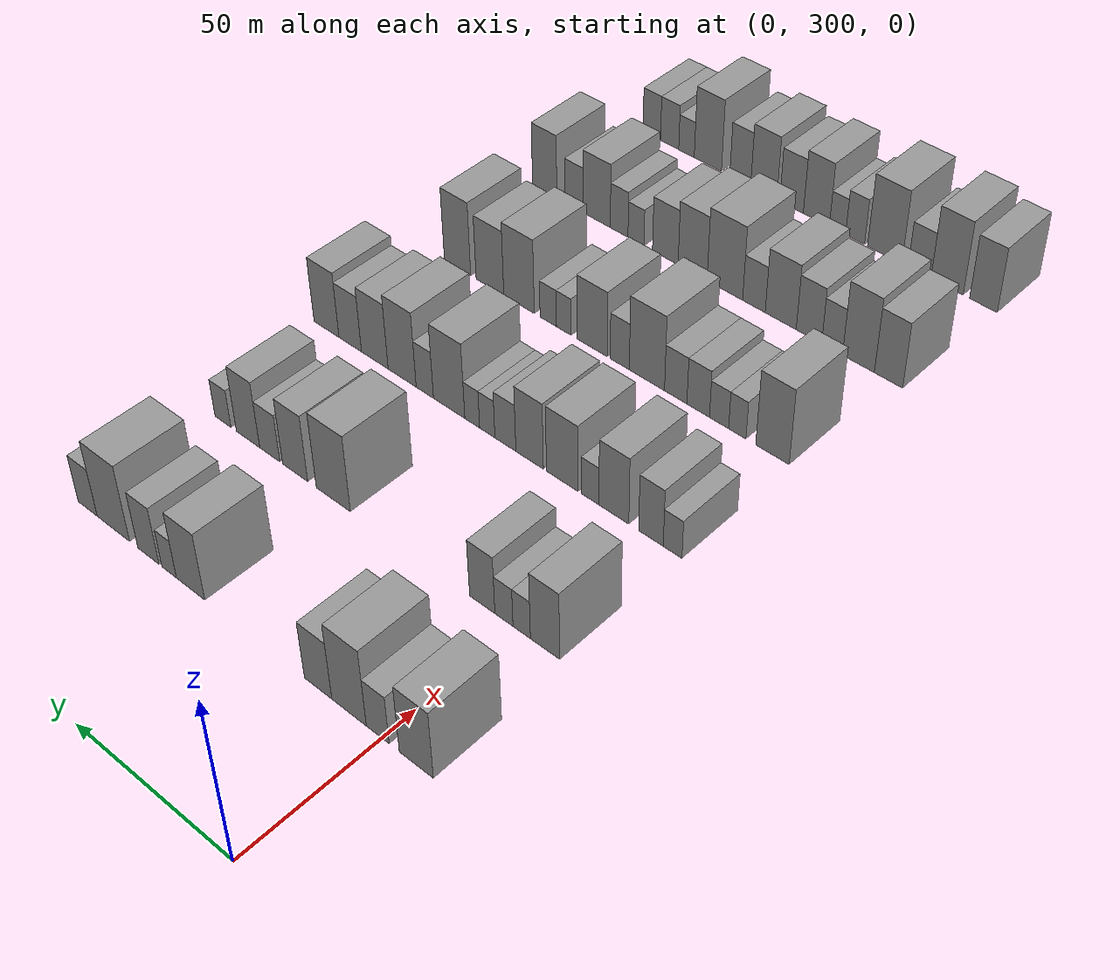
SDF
<sdf version="1.6">
 <world name="default">
  <model name="building_94">
   <static>1</static>
   <pose>50.0000 289.8566 0 0.000000 0.000000 0.000000</pose>
   <link name="link">
    <pose>0 0 10.50 0 0 0</pose>
    <collision name="collision"><geometry><box><size>20.0000 9.9284 21.0000</size></box></geometry></collision>
    <visual name="visual">
     <cast_shadows>0</cast_shadows>
     <geometry><box><size>20.0000 9.9284 21.0000</size></box></geometry>
     <material>
      <script>
       <uri>model://grey_wall/materials/scripts</uri>
       <uri>model://grey_wall/materials/textures</uri>
       <name>vrc/grey_wall</name>
      </script>
     </material>
    </visual>
   </link>
  </model>
  <model name="building_95">
   <static>1</static>
   <pose>50.0000 301.2341 0 0.000000 0.000000 0.000000</pose>
   <link name="link">
    <pose>0 0 7.50 0 0 0</pose>
    <collision name="collision"><geometry><box><size>20.0000 6.8267 15.0000</size></box></geometry></collision>
    <visual name="visual">
     <cast_shadows>0</cast_shadows>
     <geometry><box><size>20.0000 6.8267 15.0000</size></box></geometry>
     <material>
      <script>
       <uri>model://grey_wall/materials/scripts</uri>
       <uri>model://grey_wall/materials/textures</uri>
       <name>vrc/grey_wall</name>
      </script>
     </material>
    </visual>
   </link>
  </model>
  <model name="building_96">
   <static>1</static>
   <pose>50.0000 309.9277 0 0.000000 0.000000 0.000000</pose>
   <link name="link">
    <pose>0 0 12.00 0 0 0</pose>
    <collision name="collision"><geometry><box><size>20.0000 10.5604 24.0000</size></box></geometry></collision>
    <visual name="visual">
     <cast_shadows>0</cast_shadows>
     <geometry><box><size>20.0000 10.5604 24.0000</size></box></geometry>
     <material>
      <script>
       <uri>model://grey_wall/materials/scripts</uri>
       <uri>model://grey_wall/materials/textures</uri>
       <name>vrc/grey_wall</name>
      </script>
     </material>
    </visual>
   </link>
  </model>
  <model name="building_97">
   <static>1</static>
   <pose>50.0000 319.4888 0 0.000000 0.000000 0.000000</pose>
   <link name="link">
    <pose>0 0 9.00 0 0 0</pose>
    <collision name="collision"><geometry><box><size>20.0000 8.5619 18.0000</size></box></geometry></collision>
    <visual name="visual">
     <cast_shadows>0</cast_shadows>
     <geometry><box><size>20.0000 8.5619 18.0000</size></box></geometry>
     <material>
      <script>
       <uri>model://grey_wall/materials/scripts</uri>
       <uri>model://grey_wall/materials/textures</uri>
       <name>vrc/grey_wall</name>
      </script>
     </material>
    </visual>
   </link>
  </model>
  <model name="building_98">
   <static>1</static>
   <pose>50.0000 361.4124 0 0.000000 0.000000 0.000000</pose>
   <link name="link">
    <pose>0 0 10.50 0 0 0</pose>
    <collision name="collision"><geometry><box><size>20.0000 9.7618 21.0000</size></box></geometry></collision>
    <visual name="visual">
     <cast_shadows>0</cast_shadows>
     <geometry><box><size>20.0000 9.7618 21.0000</size></box></geometry>
     <material>
      <script>
       <uri>model://grey_wall/materials/scripts</uri>
       <uri>model://grey_wall/materials/textures</uri>
       <name>vrc/grey_wall</name>
      </script>
     </material>
    </visual>
   </link>
  </model>
  <model name="building_99">
   <static>1</static>
   <pose>50.0000 368.8396 0 0.000000 0.000000 0.000000</pose>
   <link name="link">
    <pose>0 0 6.00 0 0 0</pose>
    <collision name="collision"><geometry><box><size>20.0000 5.0926 12.0000</size></box></geometry></collision>
    <visual name="visual">
     <cast_shadows>0</cast_shadows>
     <geometry><box><size>20.0000 5.0926 12.0000</size></box></geometry>
     <material>
      <script>
       <uri>model://grey_wall/materials/scripts</uri>
       <uri>model://grey_wall/materials/textures</uri>
       <name>vrc/grey_wall</name>
      </script>
     </material>
    </visual>
   </link>
  </model>
  <model name="building_100">
   <static>1</static>
   <pose>50.0000 376.1651 0 0.000000 0.000000 0.000000</pose>
   <link name="link">
    <pose>0 0 9.00 0 0 0</pose>
    <collision name="collision"><geometry><box><size>20.0000 7.5584 18.0000</size></box></geometry></collision>
    <visual name="visual">
     <cast_shadows>0</cast_shadows>
     <geometry><box><size>20.0000 7.5584 18.0000</size></box></geometry>
     <material>
      <script>
       <uri>model://grey_wall/materials/scripts</uri>
       <uri>model://grey_wall/materials/textures</uri>
       <name>vrc/grey_wall</name>
      </script>
     </material>
    </visual>
   </link>
  </model>
  <model name="building_101">
   <static>1</static>
   <pose>50.0000 388.8733 0 0.000000 0.000000 0.000000</pose>
   <link name="link">
    <pose>0 0 12.00 0 0 0</pose>
    <collision name="collision"><geometry><box><size>20.0000 11.8580 24.0000</size></box></geometry></collision>
    <visual name="visual">
     <cast_shadows>0</cast_shadows>
     <geometry><box><size>20.0000 11.8580 24.0000</size></box></geometry>
     <material>
      <script>
       <uri>model://grey_wall/materials/scripts</uri>
       <uri>model://grey_wall/materials/textures</uri>
       <name>vrc/grey_wall</name>
      </script>
     </material>
    </visual>
   </link>
  </model>
  <model name="building_102">
   <static>1</static>
   <pose>50.0000 398.3604 0 0.000000 0.000000 0.000000</pose>
   <link name="link">
    <pose>0 0 7.50 0 0 0</pose>
    <collision name="collision"><geometry><box><size>20.0000 7.1162 15.0000</size></box></geometry></collision>
    <visual name="visual">
     <cast_shadows>0</cast_shadows>
     <geometry><box><size>20.0000 7.1162 15.0000</size></box></geometry>
     <material>
      <script>
       <uri>model://grey_wall/materials/scripts</uri>
       <uri>model://grey_wall/materials/textures</uri>
       <name>vrc/grey_wall</name>
      </script>
     </material>
    </visual>
   </link>
  </model>
  <model name="building_226">
   <static>1</static>
   <pose>90.0000 291.0913 0 0.000000 0.000000 0.000000</pose>
   <link name="link">
    <pose>0 0 10.50 0 0 0</pose>
    <collision name="collision"><geometry><box><size>20.0000 8.6378 21.0000</size></box></geometry></collision>
    <visual name="visual">
     <cast_shadows>0</cast_shadows>
     <geometry><box><size>20.0000 8.6378 21.0000</size></box></geometry>
     <material>
      <script>
       <uri>model://grey_wall/materials/scripts</uri>
       <uri>model://grey_wall/materials/textures</uri>
       <name>vrc/grey_wall</name>
      </script>
     </material>
    </visual>
   </link>
  </model>
  <model name="building_227">
   <static>1</static>
   <pose>90.0000 298.0168 0 0.000000 0.000000 0.000000</pose>
   <link name="link">
    <pose>0 0 6.00 0 0 0</pose>
    <collision name="collision"><geometry><box><size>20.0000 5.2132 12.0000</size></box></geometry></collision>
    <visual name="visual">
     <cast_shadows>0</cast_shadows>
     <geometry><box><size>20.0000 5.2132 12.0000</size></box></geometry>
     <material>
      <script>
       <uri>model://grey_wall/materials/scripts</uri>
       <uri>model://grey_wall/materials/textures</uri>
       <name>vrc/grey_wall</name>
      </script>
     </material>
    </visual>
   </link>
  </model>
  <model name="building_228">
   <static>1</static>
   <pose>90.0000 303.3634 0 0.000000 0.000000 0.000000</pose>
   <link name="link">
    <pose>0 0 6.00 0 0 0</pose>
    <collision name="collision"><geometry><box><size>20.0000 5.4800 12.0000</size></box></geometry></collision>
    <visual name="visual">
     <cast_shadows>0</cast_shadows>
     <geometry><box><size>20.0000 5.4800 12.0000</size></box></geometry>
     <material>
      <script>
       <uri>model://grey_wall/materials/scripts</uri>
       <uri>model://grey_wall/materials/textures</uri>
       <name>vrc/grey_wall</name>
      </script>
     </material>
    </visual>
   </link>
  </model>
  <model name="building_229">
   <static>1</static>
   <pose>90.0000 309.9746 0 0.000000 0.000000 0.000000</pose>
   <link name="link">
    <pose>0 0 9.00 0 0 0</pose>
    <collision name="collision"><geometry><box><size>20.0000 7.7425 18.0000</size></box></geometry></collision>
    <visual name="visual">
     <cast_shadows>0</cast_shadows>
     <geometry><box><size>20.0000 7.7425 18.0000</size></box></geometry>
     <material>
      <script>
       <uri>model://grey_wall/materials/scripts</uri>
       <uri>model://grey_wall/materials/textures</uri>
       <name>vrc/grey_wall</name>
      </script>
     </material>
    </visual>
   </link>
  </model>
  <model name="building_230">
   <static>1</static>
   <pose>90.0000 358.2729 0 0.000000 0.000000 0.000000</pose>
   <link name="link">
    <pose>0 0 12.00 0 0 0</pose>
    <collision name="collision"><geometry><box><size>20.0000 11.6180 24.0000</size></box></geometry></collision>
    <visual name="visual">
     <cast_shadows>0</cast_shadows>
     <geometry><box><size>20.0000 11.6180 24.0000</size></box></geometry>
     <material>
      <script>
       <uri>model://grey_wall/materials/scripts</uri>
       <uri>model://grey_wall/materials/textures</uri>
       <name>vrc/grey_wall</name>
      </script>
     </material>
    </visual>
   </link>
  </model>
  <model name="building_231">
   <static>1</static>
   <pose>90.0000 371.4875 0 0.000000 0.000000 0.000000</pose>
   <link name="link">
    <pose>0 0 10.50 0 0 0</pose>
    <collision name="collision"><geometry><box><size>20.0000 8.8111 21.0000</size></box></geometry></collision>
    <visual name="visual">
     <cast_shadows>0</cast_shadows>
     <geometry><box><size>20.0000 8.8111 21.0000</size></box></geometry>
     <material>
      <script>
       <uri>model://grey_wall/materials/scripts</uri>
       <uri>model://grey_wall/materials/textures</uri>
       <name>vrc/grey_wall</name>
      </script>
     </material>
    </visual>
   </link>
  </model>
  <model name="building_232">
   <static>1</static>
   <pose>90.0000 380.5006 0 0.000000 0.000000 0.000000</pose>
   <link name="link">
    <pose>0 0 7.50 0 0 0</pose>
    <collision name="collision"><geometry><box><size>20.0000 7.2152 15.0000</size></box></geometry></collision>
    <visual name="visual">
     <cast_shadows>0</cast_shadows>
     <geometry><box><size>20.0000 7.2152 15.0000</size></box></geometry>
     <material>
      <script>
       <uri>model://grey_wall/materials/scripts</uri>
       <uri>model://grey_wall/materials/textures</uri>
       <name>vrc/grey_wall</name>
      </script>
     </material>
    </visual>
   </link>
  </model>
  <model name="building_233">
   <static>1</static>
   <pose>90.0000 388.3572 0 0.000000 0.000000 0.000000</pose>
   <link name="link">
    <pose>0 0 10.50 0 0 0</pose>
    <collision name="collision"><geometry><box><size>20.0000 8.4979 21.0000</size></box></geometry></collision>
    <visual name="visual">
     <cast_shadows>0</cast_shadows>
     <geometry><box><size>20.0000 8.4979 21.0000</size></box></geometry>
     <material>
      <script>
       <uri>model://grey_wall/materials/scripts</uri>
       <uri>model://grey_wall/materials/textures</uri>
       <name>vrc/grey_wall</name>
      </script>
     </material>
    </visual>
   </link>
  </model>
  <model name="building_234">
   <static>1</static>
   <pose>90.0000 397.5724 0 0.000000 0.000000 0.000000</pose>
   <link name="link">
    <pose>0 0 6.00 0 0 0</pose>
    <collision name="collision"><geometry><box><size>20.0000 5.9325 12.0000</size></box></geometry></collision>
    <visual name="visual">
     <cast_shadows>0</cast_shadows>
     <geometry><box><size>20.0000 5.9325 12.0000</size></box></geometry>
     <material>
      <script>
       <uri>model://grey_wall/materials/scripts</uri>
       <uri>model://grey_wall/materials/textures</uri>
       <name>vrc/grey_wall</name>
      </script>
     </material>
    </visual>
   </link>
  </model>
  <model name="building_358">
   <static>1</static>
   <pose>130.0000 288.8513 0 0.000000 0.000000 0.000000</pose>
   <link name="link">
    <pose>0 0 6.00 0 0 0</pose>
    <collision name="collision"><geometry><box><size>20.0000 5.5516 12.0000</size></box></geometry></collision>
    <visual name="visual">
     <cast_shadows>0</cast_shadows>
     <geometry><box><size>20.0000 5.5516 12.0000</size></box></geometry>
     <material>
      <script>
       <uri>model://grey_wall/materials/scripts</uri>
       <uri>model://grey_wall/materials/textures</uri>
       <name>vrc/grey_wall</name>
      </script>
     </material>
    </visual>
   </link>
  </model>
  <model name="building_359">
   <static>1</static>
   <pose>130.0000 295.3105 0 0.000000 0.000000 0.000000</pose>
   <link name="link">
    <pose>0 0 9.00 0 0 0</pose>
    <collision name="collision"><geometry><box><size>20.0000 7.3666 18.0000</size></box></geometry></collision>
    <visual name="visual">
     <cast_shadows>0</cast_shadows>
     <geometry><box><size>20.0000 7.3666 18.0000</size></box></geometry>
     <material>
      <script>
       <uri>model://grey_wall/materials/scripts</uri>
       <uri>model://grey_wall/materials/textures</uri>
       <name>vrc/grey_wall</name>
      </script>
     </material>
    </visual>
   </link>
  </model>
  <model name="building_360">
   <static>1</static>
   <pose>130.0000 306.5625 0 0.000000 0.000000 0.000000</pose>
   <link name="link">
    <pose>0 0 10.50 0 0 0</pose>
    <collision name="collision"><geometry><box><size>20.0000 9.1374 21.0000</size></box></geometry></collision>
    <visual name="visual">
     <cast_shadows>0</cast_shadows>
     <geometry><box><size>20.0000 9.1374 21.0000</size></box></geometry>
     <material>
      <script>
       <uri>model://grey_wall/materials/scripts</uri>
       <uri>model://grey_wall/materials/textures</uri>
       <name>vrc/grey_wall</name>
      </script>
     </material>
    </visual>
   </link>
  </model>
  <model name="building_361">
   <static>1</static>
   <pose>130.0000 313.8919 0 0.000000 0.000000 0.000000</pose>
   <link name="link">
    <pose>0 0 6.00 0 0 0</pose>
    <collision name="collision"><geometry><box><size>20.0000 5.5212 12.0000</size></box></geometry></collision>
    <visual name="visual">
     <cast_shadows>0</cast_shadows>
     <geometry><box><size>20.0000 5.5212 12.0000</size></box></geometry>
     <material>
      <script>
       <uri>model://grey_wall/materials/scripts</uri>
       <uri>model://grey_wall/materials/textures</uri>
       <name>vrc/grey_wall</name>
      </script>
     </material>
    </visual>
   </link>
  </model>
  <model name="building_362">
   <static>1</static>
   <pose>130.0000 322.6916 0 0.000000 0.000000 0.000000</pose>
   <link name="link">
    <pose>0 0 10.50 0 0 0</pose>
    <collision name="collision"><geometry><box><size>20.0000 10.0783 21.0000</size></box></geometry></collision>
    <visual name="visual">
     <cast_shadows>0</cast_shadows>
     <geometry><box><size>20.0000 10.0783 21.0000</size></box></geometry>
     <material>
      <script>
       <uri>model://grey_wall/materials/scripts</uri>
       <uri>model://grey_wall/materials/textures</uri>
       <name>vrc/grey_wall</name>
      </script>
     </material>
    </visual>
   </link>
  </model>
  <model name="building_363">
   <static>1</static>
   <pose>130.0000 333.2124 0 0.000000 0.000000 0.000000</pose>
   <link name="link">
    <pose>0 0 10.50 0 0 0</pose>
    <collision name="collision"><geometry><box><size>20.0000 8.9632 21.0000</size></box></geometry></collision>
    <visual name="visual">
     <cast_shadows>0</cast_shadows>
     <geometry><box><size>20.0000 8.9632 21.0000</size></box></geometry>
     <material>
      <script>
       <uri>model://grey_wall/materials/scripts</uri>
       <uri>model://grey_wall/materials/textures</uri>
       <name>vrc/grey_wall</name>
      </script>
     </material>
    </visual>
   </link>
  </model>
  <model name="building_364">
   <static>1</static>
   <pose>130.0000 341.1649 0 0.000000 0.000000 0.000000</pose>
   <link name="link">
    <pose>0 0 7.50 0 0 0</pose>
    <collision name="collision"><geometry><box><size>20.0000 6.9418 15.0000</size></box></geometry></collision>
    <visual name="visual">
     <cast_shadows>0</cast_shadows>
     <geometry><box><size>20.0000 6.9418 15.0000</size></box></geometry>
     <material>
      <script>
       <uri>model://grey_wall/materials/scripts</uri>
       <uri>model://grey_wall/materials/textures</uri>
       <name>vrc/grey_wall</name>
      </script>
     </material>
    </visual>
   </link>
  </model>
  <model name="building_365">
   <static>1</static>
   <pose>130.0000 347.1981 0 0.000000 0.000000 0.000000</pose>
   <link name="link">
    <pose>0 0 6.00 0 0 0</pose>
    <collision name="collision"><geometry><box><size>20.0000 5.1246 12.0000</size></box></geometry></collision>
    <visual name="visual">
     <cast_shadows>0</cast_shadows>
     <geometry><box><size>20.0000 5.1246 12.0000</size></box></geometry>
     <material>
      <script>
       <uri>model://grey_wall/materials/scripts</uri>
       <uri>model://grey_wall/materials/textures</uri>
       <name>vrc/grey_wall</name>
      </script>
     </material>
    </visual>
   </link>
  </model>
  <model name="building_366">
   <static>1</static>
   <pose>130.0000 352.2677 0 0.000000 0.000000 0.000000</pose>
   <link name="link">
    <pose>0 0 6.00 0 0 0</pose>
    <collision name="collision"><geometry><box><size>20.0000 5.0145 12.0000</size></box></geometry></collision>
    <visual name="visual">
     <cast_shadows>0</cast_shadows>
     <geometry><box><size>20.0000 5.0145 12.0000</size></box></geometry>
     <material>
      <script>
       <uri>model://grey_wall/materials/scripts</uri>
       <uri>model://grey_wall/materials/textures</uri>
       <name>vrc/grey_wall</name>
      </script>
     </material>
    </visual>
   </link>
  </model>
  <model name="building_367">
   <static>1</static>
   <pose>130.0000 360.1762 0 0.000000 0.000000 0.000000</pose>
   <link name="link">
    <pose>0 0 12.00 0 0 0</pose>
    <collision name="collision"><geometry><box><size>20.0000 10.8025 24.0000</size></box></geometry></collision>
    <visual name="visual">
     <cast_shadows>0</cast_shadows>
     <geometry><box><size>20.0000 10.8025 24.0000</size></box></geometry>
     <material>
      <script>
       <uri>model://grey_wall/materials/scripts</uri>
       <uri>model://grey_wall/materials/textures</uri>
       <name>vrc/grey_wall</name>
      </script>
     </material>
    </visual>
   </link>
  </model>
  <model name="building_368">
   <static>1</static>
   <pose>130.0000 368.6038 0 0.000000 0.000000 0.000000</pose>
   <link name="link">
    <pose>0 0 7.50 0 0 0</pose>
    <collision name="collision"><geometry><box><size>20.0000 6.0529 15.0000</size></box></geometry></collision>
    <visual name="visual">
     <cast_shadows>0</cast_shadows>
     <geometry><box><size>20.0000 6.0529 15.0000</size></box></geometry>
     <material>
      <script>
       <uri>model://grey_wall/materials/scripts</uri>
       <uri>model://grey_wall/materials/textures</uri>
       <name>vrc/grey_wall</name>
      </script>
     </material>
    </visual>
   </link>
  </model>
  <model name="building_369">
   <static>1</static>
   <pose>130.0000 376.6238 0 0.000000 0.000000 0.000000</pose>
   <link name="link">
    <pose>0 0 12.00 0 0 0</pose>
    <collision name="collision"><geometry><box><size>20.0000 9.9871 24.0000</size></box></geometry></collision>
    <visual name="visual">
     <cast_shadows>0</cast_shadows>
     <geometry><box><size>20.0000 9.9871 24.0000</size></box></geometry>
     <material>
      <script>
       <uri>model://grey_wall/materials/scripts</uri>
       <uri>model://grey_wall/materials/textures</uri>
       <name>vrc/grey_wall</name>
      </script>
     </material>
    </visual>
   </link>
  </model>
  <model name="building_370">
   <static>1</static>
   <pose>130.0000 386.4634 0 0.000000 0.000000 0.000000</pose>
   <link name="link">
    <pose>0 0 10.50 0 0 0</pose>
    <collision name="collision"><geometry><box><size>20.0000 9.6920 21.0000</size></box></geometry></collision>
    <visual name="visual">
     <cast_shadows>0</cast_shadows>
     <geometry><box><size>20.0000 9.6920 21.0000</size></box></geometry>
     <material>
      <script>
       <uri>model://grey_wall/materials/scripts</uri>
       <uri>model://grey_wall/materials/textures</uri>
       <name>vrc/grey_wall</name>
      </script>
     </material>
    </visual>
   </link>
  </model>
  <model name="building_371">
   <static>1</static>
   <pose>130.0000 395.4681 0 0.000000 0.000000 0.000000</pose>
   <link name="link">
    <pose>0 0 9.00 0 0 0</pose>
    <collision name="collision"><geometry><box><size>20.0000 8.3175 18.0000</size></box></geometry></collision>
    <visual name="visual">
     <cast_shadows>0</cast_shadows>
     <geometry><box><size>20.0000 8.3175 18.0000</size></box></geometry>
     <material>
      <script>
       <uri>model://grey_wall/materials/scripts</uri>
       <uri>model://grey_wall/materials/textures</uri>
       <name>vrc/grey_wall</name>
      </script>
     </material>
    </visual>
   </link>
  </model>
  <model name="building_372">
   <static>1</static>
   <pose>130.0000 404.3002 0 0.000000 0.000000 0.000000</pose>
   <link name="link">
    <pose>0 0 10.50 0 0 0</pose>
    <collision name="collision"><geometry><box><size>20.0000 9.3465 21.0000</size></box></geometry></collision>
    <visual name="visual">
     <cast_shadows>0</cast_shadows>
     <geometry><box><size>20.0000 9.3465 21.0000</size></box></geometry>
     <material>
      <script>
       <uri>model://grey_wall/materials/scripts</uri>
       <uri>model://grey_wall/materials/textures</uri>
       <name>vrc/grey_wall</name>
      </script>
     </material>
    </visual>
   </link>
  </model>
  <model name="building_502">
   <static>1</static>
   <pose>170.0000 291.4764 0 0.000000 0.000000 0.000000</pose>
   <link name="link">
    <pose>0 0 12.00 0 0 0</pose>
    <collision name="collision"><geometry><box><size>20.0000 10.0750 24.0000</size></box></geometry></collision>
    <visual name="visual">
     <cast_shadows>0</cast_shadows>
     <geometry><box><size>20.0000 10.0750 24.0000</size></box></geometry>
     <material>
      <script>
       <uri>model://grey_wall/materials/scripts</uri>
       <uri>model://grey_wall/materials/textures</uri>
       <name>vrc/grey_wall</name>
      </script>
     </material>
    </visual>
   </link>
  </model>
  <model name="building_503">
   <static>1</static>
   <pose>170.0000 302.1935 0 0.000000 0.000000 0.000000</pose>
   <link name="link">
    <pose>0 0 6.00 0 0 0</pose>
    <collision name="collision"><geometry><box><size>20.0000 5.3593 12.0000</size></box></geometry></collision>
    <visual name="visual">
     <cast_shadows>0</cast_shadows>
     <geometry><box><size>20.0000 5.3593 12.0000</size></box></geometry>
     <material>
      <script>
       <uri>model://grey_wall/materials/scripts</uri>
       <uri>model://grey_wall/materials/textures</uri>
       <name>vrc/grey_wall</name>
      </script>
     </material>
    </visual>
   </link>
  </model>
  <model name="building_504">
   <static>1</static>
   <pose>170.0000 307.8548 0 0.000000 0.000000 0.000000</pose>
   <link name="link">
    <pose>0 0 6.00 0 0 0</pose>
    <collision name="collision"><geometry><box><size>20.0000 5.9631 12.0000</size></box></geometry></collision>
    <visual name="visual">
     <cast_shadows>0</cast_shadows>
     <geometry><box><size>20.0000 5.9631 12.0000</size></box></geometry>
     <material>
      <script>
       <uri>model://grey_wall/materials/scripts</uri>
       <uri>model://grey_wall/materials/textures</uri>
       <name>vrc/grey_wall</name>
      </script>
     </material>
    </visual>
   </link>
  </model>
  <model name="building_505">
   <static>1</static>
   <pose>170.0000 314.4059 0 0.000000 0.000000 0.000000</pose>
   <link name="link">
    <pose>0 0 7.50 0 0 0</pose>
    <collision name="collision"><geometry><box><size>20.0000 7.1392 15.0000</size></box></geometry></collision>
    <visual name="visual">
     <cast_shadows>0</cast_shadows>
     <geometry><box><size>20.0000 7.1392 15.0000</size></box></geometry>
     <material>
      <script>
       <uri>model://grey_wall/materials/scripts</uri>
       <uri>model://grey_wall/materials/textures</uri>
       <name>vrc/grey_wall</name>
      </script>
     </material>
    </visual>
   </link>
  </model>
  <model name="building_506">
   <static>1</static>
   <pose>170.0000 321.5664 0 0.000000 0.000000 0.000000</pose>
   <link name="link">
    <pose>0 0 7.50 0 0 0</pose>
    <collision name="collision"><geometry><box><size>20.0000 7.1817 15.0000</size></box></geometry></collision>
    <visual name="visual">
     <cast_shadows>0</cast_shadows>
     <geometry><box><size>20.0000 7.1817 15.0000</size></box></geometry>
     <material>
      <script>
       <uri>model://grey_wall/materials/scripts</uri>
       <uri>model://grey_wall/materials/textures</uri>
       <name>vrc/grey_wall</name>
      </script>
     </material>
    </visual>
   </link>
  </model>
  <model name="building_507">
   <static>1</static>
   <pose>170.0000 330.9106 0 0.000000 0.000000 0.000000</pose>
   <link name="link">
    <pose>0 0 12.00 0 0 0</pose>
    <collision name="collision"><geometry><box><size>20.0000 11.5068 24.0000</size></box></geometry></collision>
    <visual name="visual">
     <cast_shadows>0</cast_shadows>
     <geometry><box><size>20.0000 11.5068 24.0000</size></box></geometry>
     <material>
      <script>
       <uri>model://grey_wall/materials/scripts</uri>
       <uri>model://grey_wall/materials/textures</uri>
       <name>vrc/grey_wall</name>
      </script>
     </material>
    </visual>
   </link>
  </model>
  <model name="building_508">
   <static>1</static>
   <pose>170.0000 339.8297 0 0.000000 0.000000 0.000000</pose>
   <link name="link">
    <pose>0 0 7.50 0 0 0</pose>
    <collision name="collision"><geometry><box><size>20.0000 6.3314 15.0000</size></box></geometry></collision>
    <visual name="visual">
     <cast_shadows>0</cast_shadows>
     <geometry><box><size>20.0000 6.3314 15.0000</size></box></geometry>
     <material>
      <script>
       <uri>model://grey_wall/materials/scripts</uri>
       <uri>model://grey_wall/materials/textures</uri>
       <name>vrc/grey_wall</name>
      </script>
     </material>
    </visual>
   </link>
  </model>
  <model name="building_509">
   <static>1</static>
   <pose>170.0000 349.1346 0 0.000000 0.000000 0.000000</pose>
   <link name="link">
    <pose>0 0 10.50 0 0 0</pose>
    <collision name="collision"><geometry><box><size>20.0000 10.2785 21.0000</size></box></geometry></collision>
    <visual name="visual">
     <cast_shadows>0</cast_shadows>
     <geometry><box><size>20.0000 10.2785 21.0000</size></box></geometry>
     <material>
      <script>
       <uri>model://grey_wall/materials/scripts</uri>
       <uri>model://grey_wall/materials/textures</uri>
       <name>vrc/grey_wall</name>
      </script>
     </material>
    </visual>
   </link>
  </model>
  <model name="building_510">
   <static>1</static>
   <pose>170.0000 358.8071 0 0.000000 0.000000 0.000000</pose>
   <link name="link">
    <pose>0 0 6.00 0 0 0</pose>
    <collision name="collision"><geometry><box><size>20.0000 5.0665 12.0000</size></box></geometry></collision>
    <visual name="visual">
     <cast_shadows>0</cast_shadows>
     <geometry><box><size>20.0000 5.0665 12.0000</size></box></geometry>
     <material>
      <script>
       <uri>model://grey_wall/materials/scripts</uri>
       <uri>model://grey_wall/materials/textures</uri>
       <name>vrc/grey_wall</name>
      </script>
     </material>
    </visual>
   </link>
  </model>
  <model name="building_511">
   <static>1</static>
   <pose>170.0000 364.2109 0 0.000000 0.000000 0.000000</pose>
   <link name="link">
    <pose>0 0 6.00 0 0 0</pose>
    <collision name="collision"><geometry><box><size>20.0000 5.7411 12.0000</size></box></geometry></collision>
    <visual name="visual">
     <cast_shadows>0</cast_shadows>
     <geometry><box><size>20.0000 5.7411 12.0000</size></box></geometry>
     <material>
      <script>
       <uri>model://grey_wall/materials/scripts</uri>
       <uri>model://grey_wall/materials/textures</uri>
       <name>vrc/grey_wall</name>
      </script>
     </material>
    </visual>
   </link>
  </model>
  <model name="building_512">
   <static>1</static>
   <pose>170.0000 374.5331 0 0.000000 0.000000 0.000000</pose>
   <link name="link">
    <pose>0 0 12.00 0 0 0</pose>
    <collision name="collision"><geometry><box><size>20.0000 10.9033 24.0000</size></box></geometry></collision>
    <visual name="visual">
     <cast_shadows>0</cast_shadows>
     <geometry><box><size>20.0000 10.9033 24.0000</size></box></geometry>
     <material>
      <script>
       <uri>model://grey_wall/materials/scripts</uri>
       <uri>model://grey_wall/materials/textures</uri>
       <name>vrc/grey_wall</name>
      </script>
     </material>
    </visual>
   </link>
  </model>
  <model name="building_513">
   <static>1</static>
   <pose>170.0000 385.0038 0 0.000000 0.000000 0.000000</pose>
   <link name="link">
    <pose>0 0 10.50 0 0 0</pose>
    <collision name="collision"><geometry><box><size>20.0000 10.0380 21.0000</size></box></geometry></collision>
    <visual name="visual">
     <cast_shadows>0</cast_shadows>
     <geometry><box><size>20.0000 10.0380 21.0000</size></box></geometry>
     <material>
      <script>
       <uri>model://grey_wall/materials/scripts</uri>
       <uri>model://grey_wall/materials/textures</uri>
       <name>vrc/grey_wall</name>
      </script>
     </material>
    </visual>
   </link>
  </model>
  <model name="building_514">
   <static>1</static>
   <pose>170.0000 396.9072 0 0.000000 0.000000 0.000000</pose>
   <link name="link">
    <pose>0 0 12.00 0 0 0</pose>
    <collision name="collision"><geometry><box><size>20.0000 9.7688 24.0000</size></box></geometry></collision>
    <visual name="visual">
     <cast_shadows>0</cast_shadows>
     <geometry><box><size>20.0000 9.7688 24.0000</size></box></geometry>
     <material>
      <script>
       <uri>model://grey_wall/materials/scripts</uri>
       <uri>model://grey_wall/materials/textures</uri>
       <name>vrc/grey_wall</name>
      </script>
     </material>
    </visual>
   </link>
  </model>
  <model name="building_640">
   <static>1</static>
   <pose>210.0000 286.2733 0 0.000000 0.000000 0.000000</pose>
   <link name="link">
    <pose>0 0 10.50 0 0 0</pose>
    <collision name="collision"><geometry><box><size>20.0000 8.5919 21.0000</size></box></geometry></collision>
    <visual name="visual">
     <cast_shadows>0</cast_shadows>
     <geometry><box><size>20.0000 8.5919 21.0000</size></box></geometry>
     <material>
      <script>
       <uri>model://grey_wall/materials/scripts</uri>
       <uri>model://grey_wall/materials/textures</uri>
       <name>vrc/grey_wall</name>
      </script>
     </material>
    </visual>
   </link>
  </model>
  <model name="building_641">
   <static>1</static>
   <pose>210.0000 295.4821 0 0.000000 0.000000 0.000000</pose>
   <link name="link">
    <pose>0 0 12.00 0 0 0</pose>
    <collision name="collision"><geometry><box><size>20.0000 9.8259 24.0000</size></box></geometry></collision>
    <visual name="visual">
     <cast_shadows>0</cast_shadows>
     <geometry><box><size>20.0000 9.8259 24.0000</size></box></geometry>
     <material>
      <script>
       <uri>model://grey_wall/materials/scripts</uri>
       <uri>model://grey_wall/materials/textures</uri>
       <name>vrc/grey_wall</name>
      </script>
     </material>
    </visual>
   </link>
  </model>
  <model name="building_642">
   <static>1</static>
   <pose>210.0000 303.6608 0 0.000000 0.000000 0.000000</pose>
   <link name="link">
    <pose>0 0 7.50 0 0 0</pose>
    <collision name="collision"><geometry><box><size>20.0000 6.5314 15.0000</size></box></geometry></collision>
    <visual name="visual">
     <cast_shadows>0</cast_shadows>
     <geometry><box><size>20.0000 6.5314 15.0000</size></box></geometry>
     <material>
      <script>
       <uri>model://grey_wall/materials/scripts</uri>
       <uri>model://grey_wall/materials/textures</uri>
       <name>vrc/grey_wall</name>
      </script>
     </material>
    </visual>
   </link>
  </model>
  <model name="building_643">
   <static>1</static>
   <pose>210.0000 310.9727 0 0.000000 0.000000 0.000000</pose>
   <link name="link">
    <pose>0 0 9.00 0 0 0</pose>
    <collision name="collision"><geometry><box><size>20.0000 8.0925 18.0000</size></box></geometry></collision>
    <visual name="visual">
     <cast_shadows>0</cast_shadows>
     <geometry><box><size>20.0000 8.0925 18.0000</size></box></geometry>
     <material>
      <script>
       <uri>model://grey_wall/materials/scripts</uri>
       <uri>model://grey_wall/materials/textures</uri>
       <name>vrc/grey_wall</name>
      </script>
     </material>
    </visual>
   </link>
  </model>
  <model name="building_644">
   <static>1</static>
   <pose>210.0000 320.0397 0 0.000000 0.000000 0.000000</pose>
   <link name="link">
    <pose>0 0 10.50 0 0 0</pose>
    <collision name="collision"><geometry><box><size>20.0000 10.0415 21.0000</size></box></geometry></collision>
    <visual name="visual">
     <cast_shadows>0</cast_shadows>
     <geometry><box><size>20.0000 10.0415 21.0000</size></box></geometry>
     <material>
      <script>
       <uri>model://grey_wall/materials/scripts</uri>
       <uri>model://grey_wall/materials/textures</uri>
       <name>vrc/grey_wall</name>
      </script>
     </material>
    </visual>
   </link>
  </model>
  <model name="building_645">
   <static>1</static>
   <pose>210.0000 328.7796 0 0.000000 0.000000 0.000000</pose>
   <link name="link">
    <pose>0 0 7.50 0 0 0</pose>
    <collision name="collision"><geometry><box><size>20.0000 7.4382 15.0000</size></box></geometry></collision>
    <visual name="visual">
     <cast_shadows>0</cast_shadows>
     <geometry><box><size>20.0000 7.4382 15.0000</size></box></geometry>
     <material>
      <script>
       <uri>model://grey_wall/materials/scripts</uri>
       <uri>model://grey_wall/materials/textures</uri>
       <name>vrc/grey_wall</name>
      </script>
     </material>
    </visual>
   </link>
  </model>
  <model name="building_646">
   <static>1</static>
   <pose>210.0000 338.4708 0 0.000000 0.000000 0.000000</pose>
   <link name="link">
    <pose>0 0 12.00 0 0 0</pose>
    <collision name="collision"><geometry><box><size>20.0000 11.9443 24.0000</size></box></geometry></collision>
    <visual name="visual">
     <cast_shadows>0</cast_shadows>
     <geometry><box><size>20.0000 11.9443 24.0000</size></box></geometry>
     <material>
      <script>
       <uri>model://grey_wall/materials/scripts</uri>
       <uri>model://grey_wall/materials/textures</uri>
       <name>vrc/grey_wall</name>
      </script>
     </material>
    </visual>
   </link>
  </model>
  <model name="building_647">
   <static>1</static>
   <pose>210.0000 349.4021 0 0.000000 0.000000 0.000000</pose>
   <link name="link">
    <pose>0 0 10.50 0 0 0</pose>
    <collision name="collision"><geometry><box><size>20.0000 9.9183 21.0000</size></box></geometry></collision>
    <visual name="visual">
     <cast_shadows>0</cast_shadows>
     <geometry><box><size>20.0000 9.9183 21.0000</size></box></geometry>
     <material>
      <script>
       <uri>model://grey_wall/materials/scripts</uri>
       <uri>model://grey_wall/materials/textures</uri>
       <name>vrc/grey_wall</name>
      </script>
     </material>
    </visual>
   </link>
  </model>
  <model name="building_648">
   <static>1</static>
   <pose>210.0000 358.8251 0 0.000000 0.000000 0.000000</pose>
   <link name="link">
    <pose>0 0 9.00 0 0 0</pose>
    <collision name="collision"><geometry><box><size>20.0000 8.9278 18.0000</size></box></geometry></collision>
    <visual name="visual">
     <cast_shadows>0</cast_shadows>
     <geometry><box><size>20.0000 8.9278 18.0000</size></box></geometry>
     <material>
      <script>
       <uri>model://grey_wall/materials/scripts</uri>
       <uri>model://grey_wall/materials/textures</uri>
       <name>vrc/grey_wall</name>
      </script>
     </material>
    </visual>
   </link>
  </model>
  <model name="building_649">
   <static>1</static>
   <pose>210.0000 369.1316 0 0.000000 0.000000 0.000000</pose>
   <link name="link">
    <pose>0 0 6.00 0 0 0</pose>
    <collision name="collision"><geometry><box><size>20.0000 5.6851 12.0000</size></box></geometry></collision>
    <visual name="visual">
     <cast_shadows>0</cast_shadows>
     <geometry><box><size>20.0000 5.6851 12.0000</size></box></geometry>
     <material>
      <script>
       <uri>model://grey_wall/materials/scripts</uri>
       <uri>model://grey_wall/materials/textures</uri>
       <name>vrc/grey_wall</name>
      </script>
     </material>
    </visual>
   </link>
  </model>
  <model name="building_650">
   <static>1</static>
   <pose>210.0000 375.1405 0 0.000000 0.000000 0.000000</pose>
   <link name="link">
    <pose>0 0 7.50 0 0 0</pose>
    <collision name="collision"><geometry><box><size>20.0000 6.3328 15.0000</size></box></geometry></collision>
    <visual name="visual">
     <cast_shadows>0</cast_shadows>
     <geometry><box><size>20.0000 6.3328 15.0000</size></box></geometry>
     <material>
      <script>
       <uri>model://grey_wall/materials/scripts</uri>
       <uri>model://grey_wall/materials/textures</uri>
       <name>vrc/grey_wall</name>
      </script>
     </material>
    </visual>
   </link>
  </model>
  <model name="building_651">
   <static>1</static>
   <pose>210.0000 383.3123 0 0.000000 0.000000 0.000000</pose>
   <link name="link">
    <pose>0 0 10.50 0 0 0</pose>
    <collision name="collision"><geometry><box><size>20.0000 10.0109 21.0000</size></box></geometry></collision>
    <visual name="visual">
     <cast_shadows>0</cast_shadows>
     <geometry><box><size>20.0000 10.0109 21.0000</size></box></geometry>
     <material>
      <script>
       <uri>model://grey_wall/materials/scripts</uri>
       <uri>model://grey_wall/materials/textures</uri>
       <name>vrc/grey_wall</name>
      </script>
     </material>
    </visual>
   </link>
  </model>
  <model name="building_652">
   <static>1</static>
   <pose>210.0000 391.6547 0 0.000000 0.000000 0.000000</pose>
   <link name="link">
    <pose>0 0 7.50 0 0 0</pose>
    <collision name="collision"><geometry><box><size>20.0000 6.6739 15.0000</size></box></geometry></collision>
    <visual name="visual">
     <cast_shadows>0</cast_shadows>
     <geometry><box><size>20.0000 6.6739 15.0000</size></box></geometry>
     <material>
      <script>
       <uri>model://grey_wall/materials/scripts</uri>
       <uri>model://grey_wall/materials/textures</uri>
       <name>vrc/grey_wall</name>
      </script>
     </material>
    </visual>
   </link>
  </model>
  <model name="building_653">
   <static>1</static>
   <pose>210.0000 402.5762 0 0.000000 0.000000 0.000000</pose>
   <link name="link">
    <pose>0 0 10.50 0 0 0</pose>
    <collision name="collision"><geometry><box><size>20.0000 9.1692 21.0000</size></box></geometry></collision>
    <visual name="visual">
     <cast_shadows>0</cast_shadows>
     <geometry><box><size>20.0000 9.1692 21.0000</size></box></geometry>
     <material>
      <script>
       <uri>model://grey_wall/materials/scripts</uri>
       <uri>model://grey_wall/materials/textures</uri>
       <name>vrc/grey_wall</name>
      </script>
     </material>
    </visual>
   </link>
  </model>
  <model name="building_780">
   <static>1</static>
   <pose>250.0000 284.8192 0 0.000000 0.000000 0.000000</pose>
   <link name="link">
    <pose>0 0 10.50 0 0 0</pose>
    <collision name="collision"><geometry><box><size>20.0000 8.4948 21.0000</size></box></geometry></collision>
    <visual name="visual">
     <cast_shadows>0</cast_shadows>
     <geometry><box><size>20.0000 8.4948 21.0000</size></box></geometry>
     <material>
      <script>
       <uri>model://grey_wall/materials/scripts</uri>
       <uri>model://grey_wall/materials/textures</uri>
       <name>vrc/grey_wall</name>
      </script>
     </material>
    </visual>
   </link>
  </model>
  <model name="building_781">
   <static>1</static>
   <pose>250.0000 296.1359 0 0.000000 0.000000 0.000000</pose>
   <link name="link">
    <pose>0 0 12.00 0 0 0</pose>
    <collision name="collision"><geometry><box><size>20.0000 10.1387 24.0000</size></box></geometry></collision>
    <visual name="visual">
     <cast_shadows>0</cast_shadows>
     <geometry><box><size>20.0000 10.1387 24.0000</size></box></geometry>
     <material>
      <script>
       <uri>model://grey_wall/materials/scripts</uri>
       <uri>model://grey_wall/materials/textures</uri>
       <name>vrc/grey_wall</name>
      </script>
     </material>
    </visual>
   </link>
  </model>
  <model name="building_782">
   <static>1</static>
   <pose>250.0000 304.8459 0 0.000000 0.000000 0.000000</pose>
   <link name="link">
    <pose>0 0 7.50 0 0 0</pose>
    <collision name="collision"><geometry><box><size>20.0000 7.2813 15.0000</size></box></geometry></collision>
    <visual name="visual">
     <cast_shadows>0</cast_shadows>
     <geometry><box><size>20.0000 7.2813 15.0000</size></box></geometry>
     <material>
      <script>
       <uri>model://grey_wall/materials/scripts</uri>
       <uri>model://grey_wall/materials/textures</uri>
       <name>vrc/grey_wall</name>
      </script>
     </material>
    </visual>
   </link>
  </model>
  <model name="building_783">
   <static>1</static>
   <pose>250.0000 316.0754 0 0.000000 0.000000 0.000000</pose>
   <link name="link">
    <pose>0 0 12.00 0 0 0</pose>
    <collision name="collision"><geometry><box><size>20.0000 11.1777 24.0000</size></box></geometry></collision>
    <visual name="visual">
     <cast_shadows>0</cast_shadows>
     <geometry><box><size>20.0000 11.1777 24.0000</size></box></geometry>
     <material>
      <script>
       <uri>model://grey_wall/materials/scripts</uri>
       <uri>model://grey_wall/materials/textures</uri>
       <name>vrc/grey_wall</name>
      </script>
     </material>
    </visual>
   </link>
  </model>
  <model name="building_784">
   <static>1</static>
   <pose>250.0000 325.8020 0 0.000000 0.000000 0.000000</pose>
   <link name="link">
    <pose>0 0 7.50 0 0 0</pose>
    <collision name="collision"><geometry><box><size>20.0000 6.2756 15.0000</size></box></geometry></collision>
    <visual name="visual">
     <cast_shadows>0</cast_shadows>
     <geometry><box><size>20.0000 6.2756 15.0000</size></box></geometry>
     <material>
      <script>
       <uri>model://grey_wall/materials/scripts</uri>
       <uri>model://grey_wall/materials/textures</uri>
       <name>vrc/grey_wall</name>
      </script>
     </material>
    </visual>
   </link>
  </model>
  <model name="building_785">
   <static>1</static>
   <pose>250.0000 331.6673 0 0.000000 0.000000 0.000000</pose>
   <link name="link">
    <pose>0 0 6.00 0 0 0</pose>
    <collision name="collision"><geometry><box><size>20.0000 5.4550 12.0000</size></box></geometry></collision>
    <visual name="visual">
     <cast_shadows>0</cast_shadows>
     <geometry><box><size>20.0000 5.4550 12.0000</size></box></geometry>
     <material>
      <script>
       <uri>model://grey_wall/materials/scripts</uri>
       <uri>model://grey_wall/materials/textures</uri>
       <name>vrc/grey_wall</name>
      </script>
     </material>
    </visual>
   </link>
  </model>
  <model name="building_786">
   <static>1</static>
   <pose>250.0000 338.8204 0 0.000000 0.000000 0.000000</pose>
   <link name="link">
    <pose>0 0 10.50 0 0 0</pose>
    <collision name="collision"><geometry><box><size>20.0000 8.8511 21.0000</size></box></geometry></collision>
    <visual name="visual">
     <cast_shadows>0</cast_shadows>
     <geometry><box><size>20.0000 8.8511 21.0000</size></box></geometry>
     <material>
      <script>
       <uri>model://grey_wall/materials/scripts</uri>
       <uri>model://grey_wall/materials/textures</uri>
       <name>vrc/grey_wall</name>
      </script>
     </material>
    </visual>
   </link>
  </model>
  <model name="building_787">
   <static>1</static>
   <pose>250.0000 347.3316 0 0.000000 0.000000 0.000000</pose>
   <link name="link">
    <pose>0 0 9.00 0 0 0</pose>
    <collision name="collision"><geometry><box><size>20.0000 8.1714 18.0000</size></box></geometry></collision>
    <visual name="visual">
     <cast_shadows>0</cast_shadows>
     <geometry><box><size>20.0000 8.1714 18.0000</size></box></geometry>
     <material>
      <script>
       <uri>model://grey_wall/materials/scripts</uri>
       <uri>model://grey_wall/materials/textures</uri>
       <name>vrc/grey_wall</name>
      </script>
     </material>
    </visual>
   </link>
  </model>
  <model name="building_788">
   <static>1</static>
   <pose>250.0000 357.0108 0 0.000000 0.000000 0.000000</pose>
   <link name="link">
    <pose>0 0 10.50 0 0 0</pose>
    <collision name="collision"><geometry><box><size>20.0000 9.1869 21.0000</size></box></geometry></collision>
    <visual name="visual">
     <cast_shadows>0</cast_shadows>
     <geometry><box><size>20.0000 9.1869 21.0000</size></box></geometry>
     <material>
      <script>
       <uri>model://grey_wall/materials/scripts</uri>
       <uri>model://grey_wall/materials/textures</uri>
       <name>vrc/grey_wall</name>
      </script>
     </material>
    </visual>
   </link>
  </model>
  <model name="building_789">
   <static>1</static>
   <pose>250.0000 365.3234 0 0.000000 0.000000 0.000000</pose>
   <link name="link">
    <pose>0 0 9.00 0 0 0</pose>
    <collision name="collision"><geometry><box><size>20.0000 7.4385 18.0000</size></box></geometry></collision>
    <visual name="visual">
     <cast_shadows>0</cast_shadows>
     <geometry><box><size>20.0000 7.4385 18.0000</size></box></geometry>
     <material>
      <script>
       <uri>model://grey_wall/materials/scripts</uri>
       <uri>model://grey_wall/materials/textures</uri>
       <name>vrc/grey_wall</name>
      </script>
     </material>
    </visual>
   </link>
  </model>
  <model name="building_790">
   <static>1</static>
   <pose>250.0000 376.9997 0 0.000000 0.000000 0.000000</pose>
   <link name="link">
    <pose>0 0 12.00 0 0 0</pose>
    <collision name="collision"><geometry><box><size>20.0000 9.9141 24.0000</size></box></geometry></collision>
    <visual name="visual">
     <cast_shadows>0</cast_shadows>
     <geometry><box><size>20.0000 9.9141 24.0000</size></box></geometry>
     <material>
      <script>
       <uri>model://grey_wall/materials/scripts</uri>
       <uri>model://grey_wall/materials/textures</uri>
       <name>vrc/grey_wall</name>
      </script>
     </material>
    </visual>
   </link>
  </model>
  <model name="building_791">
   <static>1</static>
   <pose>250.0000 384.8294 0 0.000000 0.000000 0.000000</pose>
   <link name="link">
    <pose>0 0 6.00 0 0 0</pose>
    <collision name="collision"><geometry><box><size>20.0000 5.7453 12.0000</size></box></geometry></collision>
    <visual name="visual">
     <cast_shadows>0</cast_shadows>
     <geometry><box><size>20.0000 5.7453 12.0000</size></box></geometry>
     <material>
      <script>
       <uri>model://grey_wall/materials/scripts</uri>
       <uri>model://grey_wall/materials/textures</uri>
       <name>vrc/grey_wall</name>
      </script>
     </material>
    </visual>
   </link>
  </model>
  <model name="building_792">
   <static>1</static>
   <pose>250.0000 391.1022 0 0.000000 0.000000 0.000000</pose>
   <link name="link">
    <pose>0 0 7.50 0 0 0</pose>
    <collision name="collision"><geometry><box><size>20.0000 6.8003 15.0000</size></box></geometry></collision>
    <visual name="visual">
     <cast_shadows>0</cast_shadows>
     <geometry><box><size>20.0000 6.8003 15.0000</size></box></geometry>
     <material>
      <script>
       <uri>model://grey_wall/materials/scripts</uri>
       <uri>model://grey_wall/materials/textures</uri>
       <name>vrc/grey_wall</name>
      </script>
     </material>
    </visual>
   </link>
  </model>
  <model name="building_793">
   <static>1</static>
   <pose>250.0000 397.7871 0 0.000000 0.000000 0.000000</pose>
   <link name="link">
    <pose>0 0 7.50 0 0 0</pose>
    <collision name="collision"><geometry><box><size>20.0000 6.5695 15.0000</size></box></geometry></collision>
    <visual name="visual">
     <cast_shadows>0</cast_shadows>
     <geometry><box><size>20.0000 6.5695 15.0000</size></box></geometry>
     <material>
      <script>
       <uri>model://grey_wall/materials/scripts</uri>
       <uri>model://grey_wall/materials/textures</uri>
       <name>vrc/grey_wall</name>
      </script>
     </material>
    </visual>
   </link>
  </model>
 </world>
</sdf>
